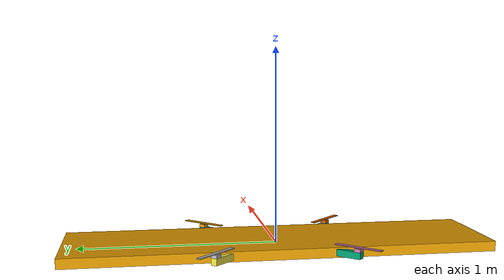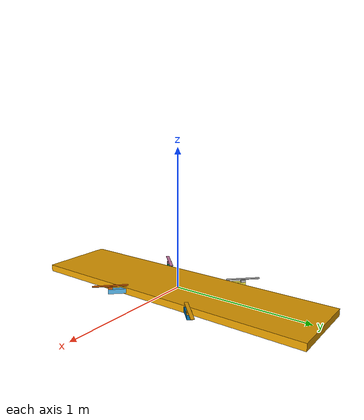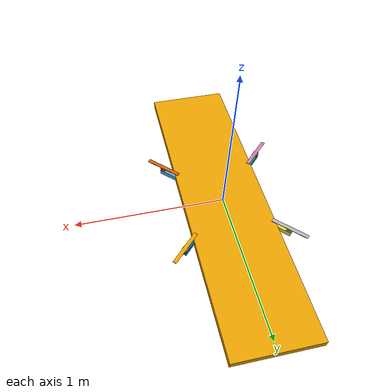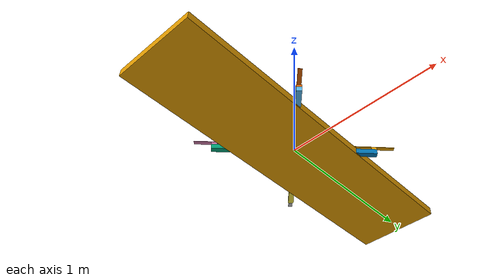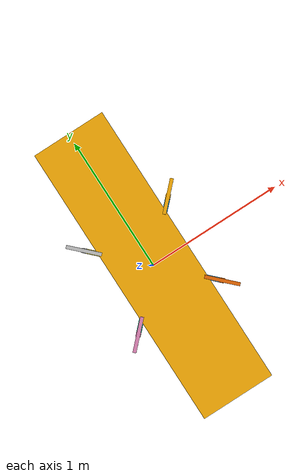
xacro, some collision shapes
<?xml version="1.0"?>
<robot name="standard_vtol" xmlns:xacro="http://www.ros.org/wiki/xacro">

<xacro:property name="body_mass" value="4.5"/>

<!-- body, airfoil size -->
<xacro:property name="body_s" value="1.667" />

<!-- body link parameters x, y, z, mass-->
<xacro:property name="body_x" value="${0.1*body_s}" />
<xacro:property name="body_y" value="${0.1*body_s}" />
<xacro:property name="body_z" value="${0.02*body_s}" />
<xacro:property name="body_m" value="${0.3*body_mass}" />

    <link name="body_FLU">
        <visual>
        <origin xyz="0.53 -1.072 0.0" rpy="1.57 0 3.14159"/>
            <geometry>
                <mesh filename="package://last_letter_2/config/param/models/standard_vtol/meshes/x8_wing.dae" scale="0.001 0.001 0.001"/>
            </geometry>
        </visual>

        <collision>
            <geometry>
               <box size="0.55 2.144 0.05" />
            </geometry>
        </collision>

        <inertial>
            <mass value="5"/>
            <inertia   ixx="0.477708333333" ixy="0" ixz="0" iyz="0"
                    iyy="0.341666666667"
                    izz="0.811041666667" />
        </inertial>
    </link>

---------------------------------------------------------- 4 quadcopter arms
<xacro:property name="arm_x" value="${0.3*body_s}" />
<xacro:property name="arm_y" value="${0.02*body_s}" />
<xacro:property name="arm_z" value="${0.02*body_s}" />
<xacro:property name="arm_m" value="${0.12*body_m}" />

    <link name="arm1">
        <visual>
        <origin xyz="${arm_x/2} 0 0"/>
            <geometry>
               <box size="${arm_x} ${arm_y} ${arm_z}" />
            </geometry>
        </visual>

        <collision>
        <origin xyz="${arm_x/2} 0 0"/>
            <geometry>
               <box size="${arm_x} ${arm_y} ${arm_z}" />
            </geometry>
        </collision>

        <inertial>
            <origin xyz="${arm_x/2} 0 0"/>
            <mass value="${arm_m}" />
            <inertia    ixx="${1/12*arm_m*(arm_y*arm_y+arm_z*arm_z)}" ixy="0" ixz="0" iyz="0"
                        iyy="${1/12*arm_m*(arm_x*arm_x+arm_z*arm_z)}"
                        izz="${1/12*arm_m*(arm_x*arm_x+arm_y*arm_y)}" />
        </inertial>
    </link>

    <joint name="body_FLU_to_arm1" type="fixed">
        <origin xyz="0 0 0" rpy="0 0 ${7/4*pi}"/>
        <parent link="body_FLU" />
        <child link="arm1" />
    </joint>

    <link name="arm2">
        <visual>
        <origin xyz="${arm_x/2} 0 0"/>
            <geometry>
                <box size="${arm_x} ${arm_y} ${arm_z}" />
            </geometry>
        </visual>

        <collision>
            <origin xyz="${arm_x/2} 0 0"/>
            <geometry>
                <box size="${arm_x} ${arm_y} ${arm_z}" />
            </geometry>
        </collision>

        <inertial>
            <origin xyz="${arm_x/2} 0 0"/>
            <mass value="${arm_m}" />
            <inertia    ixx="${1/12*arm_m*(arm_y*arm_y+arm_z*arm_z)}" ixy="0" ixz="0" iyz="0"
                        iyy="${1/12*arm_m*(arm_x*arm_x+arm_z*arm_z)}"
                        izz="${1/12*arm_m*(arm_x*arm_x+arm_y*arm_y)}" />
        </inertial>
    </link>

    <joint name="body_FLU_to_arm2" type="fixed">
        <origin xyz="0 0 0" rpy="0 0 ${5/4*pi}"/>
        <parent link="body_FLU" />
        <child link="arm2" />
    </joint>

    <link name="arm3">
        <visual>
        <origin xyz="${arm_x/2} 0 0"/>
            <geometry>
                <box size="${arm_x} ${arm_y} ${arm_z}" />
            </geometry>
        </visual>

        <collision>
            <origin xyz="${arm_x/2} 0 0"/>
            <geometry>
                <box size="${arm_x} ${arm_y} ${arm_z}" />
            </geometry>
        </collision>

        <inertial>
            <origin xyz="${arm_x/2} 0 0"/>
            <mass value="${arm_m}" />
            <inertia    ixx="${1/12*arm_m*(arm_y*arm_y+arm_z*arm_z)}" ixy="0" ixz="0" iyz="0"
                        iyy="${1/12*arm_m*(arm_x*arm_x+arm_z*arm_z)}"
                        izz="${1/12*arm_m*(arm_x*arm_x+arm_y*arm_y)}" />
        </inertial>
    </link>

    <joint name="body_FLU_to_arm3" type="fixed">
        <origin xyz="0 0 0" rpy="0 0 ${3/4*pi}"/>
        <parent link="body_FLU" />
        <child link="arm3" />
    </joint>

    <link name="arm4">
        <visual>
        <origin xyz="${arm_x/2} 0 0"/>
            <geometry>
                <box size="${arm_x} ${arm_y} ${arm_z}" />
            </geometry>
        </visual>

        <collision>
            <origin xyz="${arm_x/2} 0 0"/>
            <geometry>
                <box size="${arm_x} ${arm_y} ${arm_z}" />
            </geometry>
        </collision>

        <inertial>
            <origin xyz="${arm_x/2} 0 0"/>
            <mass value="${arm_m}" />
            <inertia    ixx="${1/12*arm_m*(arm_y*arm_y+arm_z*arm_z)}" ixy="0" ixz="0" iyz="0"
                        iyy="${1/12*arm_m*(arm_x*arm_x+arm_z*arm_z)}"
                        izz="${1/12*arm_m*(arm_x*arm_x+arm_y*arm_y)}" />
        </inertial>
    </link>

    <joint name="body_FLU_to_arm4" type="fixed">
        <origin xyz="0 0 0" rpy="0 0 ${1/4*pi}"/>
        <parent link="body_FLU" />
        <child link="arm4" />
    </joint>

    ------------------------------------------------------------------ motors

<xacro:property name="motor_x" value="${0.01*body_s}" />
<xacro:property name="motor_y" value="${0.02*body_s}" />
<xacro:property name="motor_z" value="${0.02*body_s}" />
<xacro:property name="motor_m" value="${0.05*body_m}" />

<!-- only motor(Number_0f_Motor) acceptable name for motors -->
    <link name="motor1">
        <visual>
            <origin xyz="${motor_x/2} 0 0" rpy="0 0 0"/>
            <geometry>
                <box size="${motor_x} ${motor_y} ${motor_z}" />
            </geometry>
        </visual>

        <collision>
            <origin xyz="${motor_x/2} 0 0" rpy="0 0 0"/>
            <geometry>
                <box size="${motor_x} ${motor_y} ${motor_z}" />
            </geometry>
        </collision>

        <inertial>
            <origin xyz="${motor_x/2} 0 0" rpy="0 0 0"/>
            <mass value="${motor_m}" />
            <inertia    ixx="${1/12*motor_m*(motor_y*motor_y+motor_z*motor_z)}" ixy="0" ixz="0" iyz="0"
                        iyy="${1/12*motor_m*(motor_x*motor_x+motor_z*motor_z)}"
                        izz="${1/12*motor_m*(motor_x*motor_x+motor_y*motor_y)}" />
        </inertial>
    </link>

    <joint name="arm1_to_motor1" type="revolute">
        <origin xyz="${arm_x-motor_z/2} 0 ${arm_z/2}" rpy="0 -1.57 0"/>
        <parent link="arm1" />
        <child link="motor1" />
        <limit effort="1000.0" velocity="0.5"/>  --default limits upper=lower=0
    </joint>

    <link name="motor2">
        <visual>
        <origin xyz="${motor_x/2} 0 0"/>
            <geometry>
                <box size="${motor_x} ${motor_y} ${motor_z}" />
            </geometry>
        </visual>

        <collision>
            <origin xyz="${motor_x/2} 0 0"/>
            <geometry>
                <box size="${motor_x} ${motor_y} ${motor_z}" />
            </geometry>
        </collision>

        <inertial>
            <origin xyz="${motor_x/2} 0 0"/>
            <mass value="${motor_m}" />
            <inertia    ixx="${1/12*motor_m*(motor_y*motor_y+motor_z*motor_z)}" ixy="0" ixz="0" iyz="0"
                        iyy="${1/12*motor_m*(motor_x*motor_x+motor_z*motor_z)}"
                        izz="${1/12*motor_m*(motor_x*motor_x+motor_y*motor_y)}" />
        </inertial>
    </link>

    <joint name="arm2_to_motor2" type="revolute">
        <origin xyz="${arm_x-motor_z/2} 0 ${arm_z/2}" rpy="0 -1.57 0"/>
        <parent link="arm2" />
        <child link="motor2" />
        <limit effort="1000.0" velocity="0.5"/>  --default limits upper=lower=0
    </joint>

    <link name="motor3">
        <visual>
        <origin xyz="${motor_x/2} 0 0"/>
            <geometry>
                <box size="${motor_x} ${motor_y} ${motor_z}" />
            </geometry>
        </visual>

        <collision>
            <origin xyz="${motor_x/2} 0 0"/>
            <geometry>
                <box size="${motor_x} ${motor_y} ${motor_z}" />
            </geometry>
        </collision>

        <inertial>
            <origin xyz="${motor_x/2} 0 0"/>
            <mass value="${motor_m}" />
            <inertia    ixx="${1/12*motor_m*(motor_y*motor_y+motor_z*motor_z)}" ixy="0" ixz="0" iyz="0"
                        iyy="${1/12*motor_m*(motor_x*motor_x+motor_z*motor_z)}"
                        izz="${1/12*motor_m*(motor_x*motor_x+motor_y*motor_y)}" />
        </inertial>
    </link>

    <joint name="arm3_to_motor3" type="revolute">
        <origin xyz="${arm_x-motor_z/2} 0 ${arm_z/2}" rpy="0 -1.57 0"/>
        <parent link="arm3" />
        <child link="motor3" />
        <limit effort="1000.0"  velocity="0.5"/>  --default limits upper=lower=0
    </joint>

    <link name="motor4">
        <visual>
        <origin xyz="${motor_x/2} 0 0"/>
            <geometry>
                <box size="${motor_x} ${motor_y} ${motor_z}" />
            </geometry>
        </visual>

        <collision>
            <origin xyz="${motor_x/2} 0 0"/>
            <geometry>
                <box size="${motor_x} ${motor_y} ${motor_z}" />
            </geometry>
        </collision>

        <inertial>
            <origin xyz="${motor_x/2} 0 0"/>
            <mass value="${motor_m}" />
            <inertia    ixx="${1/12*motor_m*(motor_y*motor_y+motor_z*motor_z)}" ixy="0" ixz="0" iyz="0"
                        iyy="${1/12*motor_m*(motor_x*motor_x+motor_z*motor_z)}"
                        izz="${1/12*motor_m*(motor_x*motor_x+motor_y*motor_y)}" />
        </inertial>
    </link>

    <joint name="arm4_to_motor4" type="revolute">
        <origin xyz="${arm_x-motor_z/2} 0 ${arm_z/2}" rpy="0 -1.57 0"/>
        <parent link="arm4" />
        <child link="motor4" />
        <limit effort="1000.0" velocity="0.5"/>  --default limits upper=lower=0
    </joint>

 ------------------------------------------------------------------------------------- axles
<!-- arm link -->
<xacro:property name="axle_r" value="${0.002*body_s}" />
<xacro:property name="axle_h" value="${0.003*body_s}" />
<xacro:property name="axle_m" value="${0.001*body_m}" />

    <link name="axle1">
        <visual>
            <origin xyz="${axle_h/2} 0 0" rpy="0 ${pi/2} 0"/>
            <geometry>
                <cylinder radius="${axle_r}" length="${axle_h}" />
            </geometry>
        </visual>

        <collision>
            <origin xyz="${axle_h/2} 0 0" rpy="0 ${pi/2} 0"/>
            <geometry>
                <cylinder radius="${axle_r}" length="${axle_h}" />
            </geometry>
        </collision>

        <inertial>
            <origin xyz="${axle_h/2} 0 0" />
            <mass value="${axle_m}" />
            <inertia    ixx="${1/12*axle_m*axle_h*axle_h+1/4*axle_m*axle_r*axle_r}" ixy="0" ixz="0" iyz="0"
                        iyy="${1/12*axle_m*axle_h*axle_h+1/4*axle_m*axle_r*axle_r}"
                        izz="${1/2*axle_m*axle_r*axle_r}" />
        </inertial>
    </link>

    <joint name="motor1_to_axle1" type="continuous">
        <origin xyz="${motor_x} 0 0" rpy="0 0 0"/>
        <axis xyz="1 0 0" />
        <parent link="motor1" />
        <child link="axle1" />
    </joint>

    <link name="axle2">
        <visual>
            <origin xyz="${axle_h/2} 0 0" rpy="0 ${pi/2} 0"/>
            <geometry>
                <cylinder radius="${axle_r}" length="${axle_h}" />
            </geometry>
        </visual>

        <collision>
            <origin xyz="${axle_h/2} 0 0" rpy="0 ${pi/2} 0"/>
            <geometry>
                <cylinder radius="${axle_r}" length="${axle_h}" />
            </geometry>
        </collision>

        <inertial>
            <origin xyz="${axle_h/2} 0 0" />
            <mass value="${axle_m}" />
            <inertia    ixx="${1/12*axle_m*axle_h*axle_h+1/4*axle_m*axle_r*axle_r}" ixy="0" ixz="0" iyz="0"
                        iyy="${1/12*axle_m*axle_h*axle_h+1/4*axle_m*axle_r*axle_r}"
                        izz="${1/2*axle_m*axle_r*axle_r}" />
        </inertial>
    </link>

    <joint name="motor2_to_axle2" type="continuous">
        <origin xyz="${motor_x} 0 0" rpy="0 0 0"/>
        <axis xyz="1 0 0" />
        <parent link="motor2" />
        <child link="axle2" />
    </joint>

    <link name="axle3">
        <visual>
            <origin xyz="${axle_h/2} 0 0" rpy="0 ${pi/2} 0"/>
            <geometry>
                <cylinder radius="${axle_r}" length="${axle_h}" />
            </geometry>
        </visual>

        <collision>
            <origin xyz="${axle_h/2} 0 0" rpy="0 ${pi/2} 0"/>
            <geometry>
                <cylinder radius="${axle_r}" length="${axle_h}" />
            </geometry>
        </collision>

        <inertial>
            <origin xyz="${axle_h/2} 0 0" />
            <mass value="${axle_m}" />
            <inertia    ixx="${1/12*axle_m*axle_h*axle_h+1/4*axle_m*axle_r*axle_r}" ixy="0" ixz="0" iyz="0"
                        iyy="${1/12*axle_m*axle_h*axle_h+1/4*axle_m*axle_r*axle_r}"
                        izz="${1/2*axle_m*axle_r*axle_r}" />
        </inertial>
    </link>

    <joint name="motor3_to_axle3" type="continuous">
        <origin xyz="${motor_x} 0 0" rpy="0 0 0"/>
        <axis xyz="1 0 0" />
        <parent link="motor3" />
        <child link="axle3" />
    </joint>

    <link name="axle4">
        <visual>
            <origin xyz="${axle_h/2} 0 0" rpy="0 ${pi/2} 0"/>
            <geometry>
                <cylinder radius="${axle_r}" length="${axle_h}" />
            </geometry>
        </visual>

        <collision>
            <origin xyz="${axle_h/2} 0 0" rpy="0 ${pi/2} 0"/>
            <geometry>
                <cylinder radius="${axle_r}" length="${axle_h}" />
            </geometry>
        </collision>

        <inertial>
            <origin xyz="${axle_h/2} 0 0" />
            <mass value="${axle_m}" />
            <inertia    ixx="${1/12*axle_m*axle_h*axle_h+1/4*axle_m*axle_r*axle_r}" ixy="0" ixz="0" iyz="0"
                        iyy="${1/12*axle_m*axle_h*axle_h+1/4*axle_m*axle_r*axle_r}"
                        izz="${1/2*axle_m*axle_r*axle_r}" />
        </inertial>
    </link>

    <joint name="motor4_to_axle4" type="continuous">
        <origin xyz="${motor_x} 0 0" rpy="0 0 0"/>
        <axis xyz="1 0 0" />
        <parent link="motor4" />
        <child link="axle4" />
    </joint>

 ------------------------------------------------------------------------------------- propellers
<!-- propeller links -->
<xacro:property name="propeller_x" value="${0.15*body_s}" />
<xacro:property name="propeller_y" value="${0.015*body_s}" />
<xacro:property name="propeller_z" value="${0.002*body_s}" />
<xacro:property name="propeller_m" value="${0.001*body_m}" />

    <link name="prop1">
        <visual>
            <origin xyz="0 0 0" rpy="0 ${pi/2} 0"/>
            <geometry>
                <box size="${propeller_x} ${propeller_y} ${propeller_z}" />
            </geometry>
        </visual>

        <collision>
            <origin xyz="0 0 0" rpy="0 ${pi/2} 0"/>
            <geometry>
                <box size="${propeller_x} ${propeller_y} ${propeller_z}" />
            </geometry>
        </collision>

        <inertial>
            <origin xyz="0 0 0" rpy="0 ${pi/2} 0"/>
            <mass value="${propeller_m}" />
            <inertia    ixx="${1/12*propeller_m*(propeller_y*propeller_y+propeller_z*propeller_z)}" ixy="0" ixz="0" iyz="0"
                        iyy="${1/12*propeller_m*(propeller_x*propeller_x+propeller_z*propeller_z)}"
                        izz="${1/12*propeller_m*(propeller_x*propeller_x+propeller_y*propeller_y)}" />
        </inertial>
    </link>

    <joint name="axle1_to_prop1" type="fixed">
        <origin xyz="${axle_h} 0 0" rpy="0 0 0"/>
        <axis xyz="1 0 0" />
        <parent link="axle1" />
        <child link="prop1" />
    </joint>

    <link name="prop2">
        <visual>
            <origin xyz="0 0 0" rpy="0 ${pi/2} 0"/>
            <geometry>
                <box size="${propeller_x} ${propeller_y} ${propeller_z}" />
            </geometry>
        </visual>

        <collision>
            <origin xyz="0 0 0" rpy="0 ${pi/2} 0"/>
            <geometry>
                <box size="${propeller_x} ${propeller_y} ${propeller_z}" />
            </geometry>
        </collision>

        <inertial>
            <origin xyz="0 0 0" rpy="0 ${pi/2} 0"/>
            <mass value="${propeller_m}" />
            <inertia    ixx="${1/12*propeller_m*(propeller_y*propeller_y+propeller_z*propeller_z)}" ixy="0" ixz="0" iyz="0"
                        iyy="${1/12*propeller_m*(propeller_x*propeller_x+propeller_z*propeller_z)}"
                        izz="${1/12*propeller_m*(propeller_x*propeller_x+propeller_y*propeller_y)}" />
        </inertial>
    </link>

    <joint name="axle2_to_prop2" type="fixed">
        <origin xyz="${axle_h} 0 0" rpy="0 0 0"/>
        <axis xyz="1 0 0" />
        <parent link="axle2" />
        <child link="prop2" />
    </joint>

    <link name="prop3">
        <visual>
            <origin xyz="0 0 0" rpy="0 ${pi/2} 0"/>
            <geometry>
                <box size="${propeller_x} ${propeller_y} ${propeller_z}" />
            </geometry>
        </visual>

        <collision>
            <origin xyz="0 0 0" rpy="0 ${pi/2} 0"/>
            <geometry>
                <box size="${propeller_x} ${propeller_y} ${propeller_z}" />
            </geometry>
        </collision>

        <inertial>
            <origin xyz="0 0 0" rpy="0 ${pi/2} 0"/>
            <mass value="${propeller_m}" />
            <inertia    ixx="${1/12*propeller_m*(propeller_y*propeller_y+propeller_z*propeller_z)}" ixy="0" ixz="0" iyz="0"
                        iyy="${1/12*propeller_m*(propeller_x*propeller_x+propeller_z*propeller_z)}"
                        izz="${1/12*propeller_m*(propeller_x*propeller_x+propeller_y*propeller_y)}" />
        </inertial>
    </link>

    <joint name="axle3_to_prop3" type="fixed">
        <origin xyz="${axle_h} 0 0" rpy="0 0 0"/>
        <axis xyz="1 0 0" />
        <parent link="axle3" />
        <child link="prop3" />
    </joint>

    <link name="propeller4">
        <visual>
        <origin xyz="0 0 0" rpy="0 ${pi/2} 0"/>
            <geometry>
                <box size="${propeller_x} ${propeller_y} ${propeller_z}" />
            </geometry>
        </visual>

        <collision>
            <origin xyz="0 0 0" rpy="0 ${pi/2} 0"/>
            <geometry>
                <box size="${propeller_x} ${propeller_y} ${propeller_z}" />
            </geometry>
        </collision>

        <inertial>
            <origin xyz="0 0 0" rpy="0 ${pi/2} 0"/>
            <mass value="${propeller_m}" />
            <inertia    ixx="${1/12*propeller_m*(propeller_y*propeller_y+propeller_z*propeller_z)}" ixy="0" ixz="0" iyz="0"
                        iyy="${1/12*propeller_m*(propeller_x*propeller_x+propeller_z*propeller_z)}"
                        izz="${1/12*propeller_m*(propeller_x*propeller_x+propeller_y*propeller_y)}" />
        </inertial>
    </link>

    <joint name="axle4_to_prop4" type="fixed">
        <origin xyz="${axle_h} 0 0" rpy="0 0 0"/>
        <axis xyz="1 0 0" />
        <parent link="axle4" />
        <child link="propeller4" />
    </joint>

<!-- model plugins -->
    <gazebo>
        <plugin name="model_plugin" filename="libmodel_plugin.so"/>
        <plugin name="joint_state_publisher" filename="libgazebo_ros_joint_state_publisher.so">
            <jointName>arm1_to_motor1, arm2_to_motor2, arm3_to_motor3,arm4_to_motor4,motor1_to_axle1,motor2_to_axle2,motor3_to_axle3,motor4_to_axle4 </jointName>
            <robotNamespace>last_letter_2</robotNamespace>
            <updateRate>0</updateRate>
        </plugin>
    </gazebo>
</robot>
